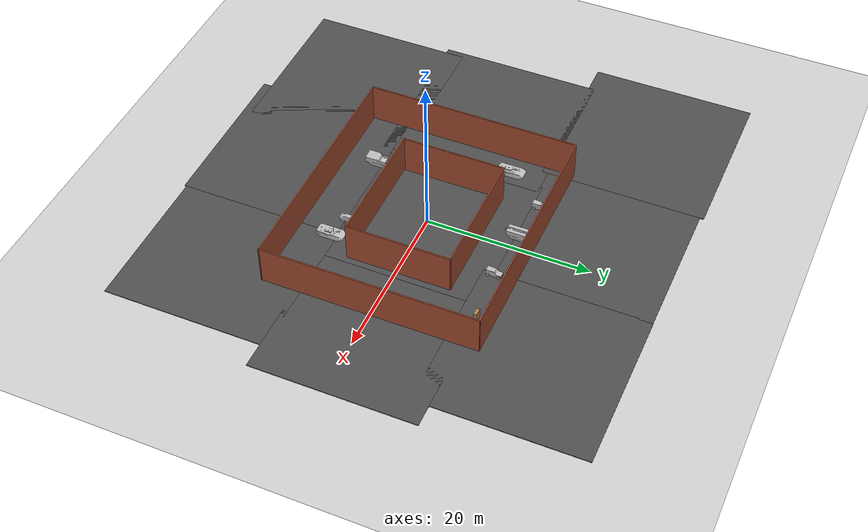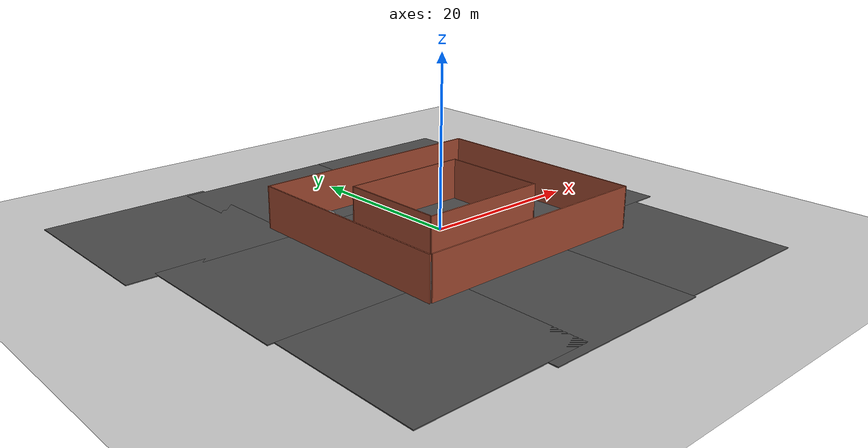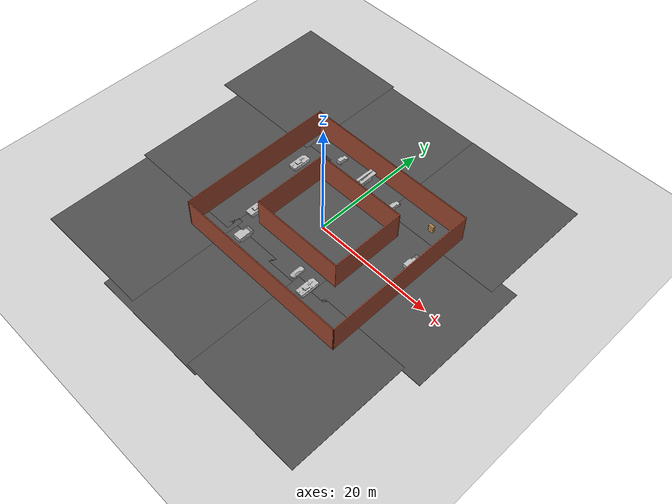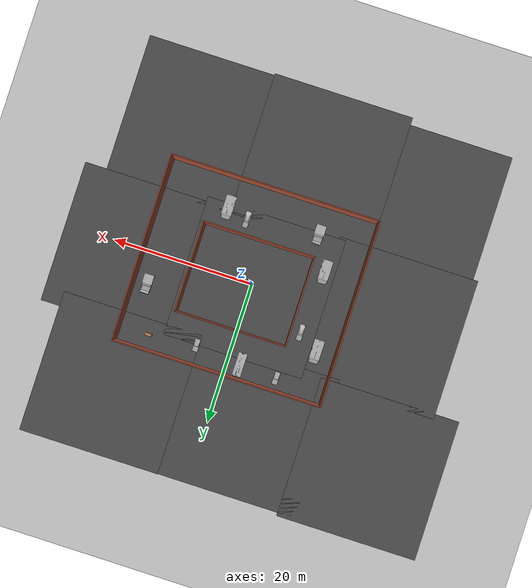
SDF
<sdf version="1.6">
 <world name="default">
  <light name="sun" type="directional">
   <pose>0 0 10 0 -0 0</pose>
   <diffuse>0.8 0.8 0.8 1</diffuse>
   <specular>0.2 0.2 0.2 1</specular>
   <attenuation>
    <range>1000</range>
    <constant>0.9</constant>
    <linear>0.01</linear>
    <quadratic>0.001</quadratic>
   </attenuation>
   <direction>-0.5 0.1 -0.9</direction>
  </light>
  <model name="ground_plane">
   <static>1</static>
   <link name="link">
    <collision name="collision">
     <geometry><plane><normal>0 0 1</normal><size>100 100</size></plane></geometry>
     <surface>
      <contact><collide_bitmask>65535</collide_bitmask></contact>
      <friction><ode><mu>100</mu><mu2>50</mu2></ode></friction>
     </surface>
    </collision>
    <visual name="visual">
     <cast_shadows>0</cast_shadows>
     <geometry><plane><normal>0 0 1</normal><size>100 100</size></plane></geometry>
     <material>
      <script><uri>file://media/materials/scripts/gazebo.material</uri><name>Gazebo/Grey</name></script>
     </material>
    </visual>
   </link>
  </model>
  <gravity>0 0 -9.8</gravity>
  <magnetic_field>6e-06 2.3e-05 -4.2e-05</magnetic_field>
  <atmosphere type="adiabatic"/>
  <physics name="default_physics" default="0" type="ode">
   <max_step_size>0.001</max_step_size>
   <real_time_factor>1</real_time_factor>
   <real_time_update_rate>1000</real_time_update_rate>
  </physics>
  <scene><ambient>0.4 0.4 0.4 1</ambient><background>0.7 0.7 0.7 1</background><shadows>1</shadows></scene>
  <audio><device>default</device></audio>
  <spherical_coordinates>
   <surface_model>EARTH_WGS84</surface_model>
   <latitude_deg>0</latitude_deg>
   <longitude_deg>0</longitude_deg>
   <elevation>0</elevation>
   <heading_deg>0</heading_deg>
  </spherical_coordinates>
  <model name="wall_sdf">
   <pose>0.86237 -0.1343 0 0 -0 0</pose>
   <link name="Wall_17">
    <collision name="Wall_17_Collision">
     <geometry><box><size>29.25 0.15 5</size></box></geometry>
     <pose>0 0 2.5 0 -0 0</pose>
    </collision>
    <visual name="Wall_17_Visual">
     <pose>0 0 2.5 0 -0 0</pose>
     <geometry><box><size>29.25 0.15 5</size></box></geometry>
     <material>
      <script><uri>file://media/materials/scripts/gazebo.material</uri><name>Gazebo/Bricks</name></script>
      <ambient>1 1 1 1</ambient>
     </material>
     <meta><layer>0</layer></meta>
    </visual>
    <pose>0.1599 -13.0851 0 0 -0 3.4e-05</pose>
   </link>
   <link name="Wall_18">
    <collision name="Wall_18_Collision">
     <geometry><box><size>26.3201 0.15 5</size></box></geometry>
     <pose>0 0 2.5 0 -0 0</pose>
    </collision>
    <visual name="Wall_18_Visual">
     <pose>0 0 2.5 0 -0 0</pose>
     <geometry><box><size>26.3201 0.15 5</size></box></geometry>
     <material>
      <script><uri>file://media/materials/scripts/gazebo.material</uri><name>Gazebo/Bricks</name></script>
      <ambient>1 1 1 1</ambient>
     </material>
     <meta><layer>0</layer></meta>
    </visual>
    <pose>14.6749 0.000401 0 0 -0 1.57347</pose>
   </link>
   <link name="Wall_19">
    <collision name="Wall_19_Collision">
     <geometry><box><size>29.5 0.15 5</size></box></geometry>
     <pose>0 0 2.5 0 -0 0</pose>
    </collision>
    <visual name="Wall_19_Visual">
     <pose>0 0 2.5 0 -0 0</pose>
     <geometry><box><size>29.5 0.15 5</size></box></geometry>
     <material>
      <script><uri>file://media/materials/scripts/gazebo.material</uri><name>Gazebo/Bricks</name></script>
      <ambient>1 1 1 1</ambient>
     </material>
     <meta><layer>0</layer></meta>
    </visual>
    <pose>-0.0351 13.0854 0 0 -0 3.14159</pose>
   </link>
   <link name="Wall_20">
    <collision name="Wall_20_Collision">
     <geometry><box><size>26.25 0.15 5</size></box></geometry>
     <pose>0 0 2.5 0 -0 0</pose>
    </collision>
    <visual name="Wall_20_Visual">
     <pose>0 0 2.5 0 -0 0</pose>
     <geometry><box><size>26.25 0.15 5</size></box></geometry>
     <material>
      <script><uri>file://media/materials/scripts/gazebo.material</uri><name>Gazebo/Bricks</name></script>
      <ambient>1 1 1 1</ambient>
     </material>
     <meta><layer>0</layer></meta>
    </visual>
    <pose>-14.7101 0.035402 0 0 -0 -1.5708</pose>
   </link>
   <link name="Wall_23">
    <collision name="Wall_23_Collision">
     <geometry><box><size>15.75 0.15 5</size></box></geometry>
     <pose>0 0 2.5 0 -0 0</pose>
    </collision>
    <visual name="Wall_23_Visual">
     <pose>0 0 2.5 0 -0 0</pose>
     <geometry><box><size>15.75 0.15 5</size></box></geometry>
     <material>
      <script><uri>file://media/materials/scripts/gazebo.material</uri><name>Gazebo/Bricks</name></script>
      <ambient>1 1 1 1</ambient>
     </material>
     <meta><layer>0</layer></meta>
    </visual>
    <pose>0.0229 -5.8436 0 0 -0 0</pose>
   </link>
   <link name="Wall_24">
    <collision name="Wall_24_Collision">
     <geometry><box><size>12.786 0.15 5</size></box></geometry>
     <pose>0 0 2.5 0 -0 0</pose>
    </collision>
    <visual name="Wall_24_Visual">
     <pose>0 0 2.5 0 -0 0</pose>
     <geometry><box><size>12.786 0.15 5</size></box></geometry>
     <material>
      <script><uri>file://media/materials/scripts/gazebo.material</uri><name>Gazebo/Bricks</name></script>
      <ambient>1 1 1 1</ambient>
     </material>
     <meta><layer>0</layer></meta>
    </visual>
    <pose>7.8229 0.474401 0 0 -0 1.5708</pose>
   </link>
   <link name="Wall_25">
    <collision name="Wall_25_Collision">
     <geometry><box><size>15.75 0.15 5</size></box></geometry>
     <pose>0 0 2.5 0 -0 0</pose>
    </collision>
    <visual name="Wall_25_Visual">
     <pose>0 0 2.5 0 -0 0</pose>
     <geometry><box><size>15.75 0.15 5</size></box></geometry>
     <material>
      <script><uri>file://media/materials/scripts/gazebo.material</uri><name>Gazebo/Bricks</name></script>
      <ambient>1 1 1 1</ambient>
     </material>
     <meta><layer>0</layer></meta>
    </visual>
    <pose>0.0229 6.7924 0 0 -0 3.14159</pose>
   </link>
   <link name="Wall_26">
    <collision name="Wall_26_Collision">
     <geometry><box><size>12.571 0.15 5</size></box></geometry>
     <pose>0 0 2.5 0 -0 0</pose>
    </collision>
    <visual name="Wall_26_Visual">
     <pose>0 0 2.5 0 -0 0</pose>
     <geometry><box><size>12.571 0.15 5</size></box></geometry>
     <material>
      <script><uri>file://media/materials/scripts/gazebo.material</uri><name>Gazebo/Bricks</name></script>
      <ambient>1 1 1 1</ambient>
     </material>
     <meta><layer>0</layer></meta>
    </visual>
    <pose>-7.7771 0.581902 0 0 -0 -1.5708</pose>
   </link>
   <static>1</static>
  </model>
  <model name="asphalt_plane_0">
   <static>1</static>
   <link name="link">
    <collision name="collision"><geometry><box><size>20 20 0.1</size></box></geometry></collision>
    <visual name="visual">
     <cast_shadows>0</cast_shadows>
     <geometry><box><size>20 20 0.1</size></box></geometry>
     <material>
      <script>
       <uri>model://asphalt_plane/materials/scripts</uri>
       <uri>model://asphalt_plane/materials/textures</uri>
       <name>vrc/asphalt</name>
      </script>
     </material>
    </visual>
   </link>
   <pose>-19.542 0.036842 0 0 -0 0</pose>
  </model>
  <model name="asphalt_plane_1">
   <static>1</static>
   <link name="link">
    <collision name="collision"><geometry><box><size>20 20 0.1</size></box></geometry></collision>
    <visual name="visual">
     <cast_shadows>0</cast_shadows>
     <geometry><box><size>20 20 0.1</size></box></geometry>
     <material>
      <script>
       <uri>model://asphalt_plane/materials/scripts</uri>
       <uri>model://asphalt_plane/materials/textures</uri>
       <name>vrc/asphalt</name>
      </script>
     </material>
    </visual>
   </link>
   <pose>-18.8455 -17.6454 0 0 -0 0</pose>
  </model>
  <model name="asphalt_plane_2">
   <static>1</static>
   <link name="link">
    <collision name="collision"><geometry><box><size>20 20 0.1</size></box></geometry></collision>
    <visual name="visual">
     <cast_shadows>0</cast_shadows>
     <geometry><box><size>20 20 0.1</size></box></geometry>
     <material>
      <script>
       <uri>model://asphalt_plane/materials/scripts</uri>
       <uri>model://asphalt_plane/materials/textures</uri>
       <name>vrc/asphalt</name>
      </script>
     </material>
    </visual>
   </link>
   <pose>-4.06392 -18.6881 0 0 -0 0</pose>
  </model>
  <model name="asphalt_plane_3">
   <static>1</static>
   <link name="link">
    <collision name="collision"><geometry><box><size>20 20 0.1</size></box></geometry></collision>
    <visual name="visual">
     <cast_shadows>0</cast_shadows>
     <geometry><box><size>20 20 0.1</size></box></geometry>
     <material>
      <script>
       <uri>model://asphalt_plane/materials/scripts</uri>
       <uri>model://asphalt_plane/materials/textures</uri>
       <name>vrc/asphalt</name>
      </script>
     </material>
    </visual>
   </link>
   <pose>14.0061 -18.4264 0 0 -0 0</pose>
  </model>
  <model name="asphalt_plane_4">
   <static>1</static>
   <link name="link">
    <collision name="collision"><geometry><box><size>20 20 0.1</size></box></geometry></collision>
    <visual name="visual">
     <cast_shadows>0</cast_shadows>
     <geometry><box><size>20 20 0.1</size></box></geometry>
     <material>
      <script>
       <uri>model://asphalt_plane/materials/scripts</uri>
       <uri>model://asphalt_plane/materials/textures</uri>
       <name>vrc/asphalt</name>
      </script>
     </material>
    </visual>
   </link>
   <pose>17.0836 1.00489 0 0 -0 0</pose>
  </model>
  <model name="asphalt_plane_5">
   <static>1</static>
   <link name="link">
    <collision name="collision"><geometry><box><size>20 20 0.1</size></box></geometry></collision>
    <visual name="visual">
     <cast_shadows>0</cast_shadows>
     <geometry><box><size>20 20 0.1</size></box></geometry>
     <material>
      <script>
       <uri>model://asphalt_plane/materials/scripts</uri>
       <uri>model://asphalt_plane/materials/textures</uri>
       <name>vrc/asphalt</name>
      </script>
     </material>
    </visual>
   </link>
   <pose>14.3755 18.9058 0 0 -0 0</pose>
  </model>
  <model name="asphalt_plane_6">
   <static>1</static>
   <link name="link">
    <collision name="collision"><geometry><box><size>20 20 0.1</size></box></geometry></collision>
    <visual name="visual">
     <cast_shadows>0</cast_shadows>
     <geometry><box><size>20 20 0.1</size></box></geometry>
     <material>
      <script>
       <uri>model://asphalt_plane/materials/scripts</uri>
       <uri>model://asphalt_plane/materials/textures</uri>
       <name>vrc/asphalt</name>
      </script>
     </material>
    </visual>
   </link>
   <pose>-5.47798 18.8643 0 0 -0 0</pose>
  </model>
  <model name="asphalt_plane_7">
   <static>1</static>
   <link name="link">
    <collision name="collision"><geometry><box><size>20 20 0.1</size></box></geometry></collision>
    <visual name="visual">
     <cast_shadows>0</cast_shadows>
     <geometry><box><size>20 20 0.1</size></box></geometry>
     <material>
      <script>
       <uri>model://asphalt_plane/materials/scripts</uri>
       <uri>model://asphalt_plane/materials/textures</uri>
       <name>vrc/asphalt</name>
      </script>
     </material>
    </visual>
   </link>
   <pose>-23.0053 19.3151 0 0 -0 0</pose>
  </model>
  <model name="bookshelf">
   <static>1</static>
   <link name="link">
    <inertial><mass>1</mass></inertial>
    <collision name="back">
     <pose>0 0.005 0.6 0 -0 0</pose>
     <geometry><box><size>0.9 0.01 1.2</size></box></geometry>
    </collision>
    <visual name="visual1">
     <pose>0 0.005 0.6 0 -0 0</pose>
     <geometry><box><size>0.9 0.01 1.2</size></box></geometry>
     <material>
      <script><uri>file://media/materials/scripts/gazebo.material</uri><name>Gazebo/Wood</name></script>
     </material>
    </visual>
    <collision name="left_side">
     <pose>0.45 -0.195 0.6 0 -0 0</pose>
     <geometry><box><size>0.02 0.4 1.2</size></box></geometry>
    </collision>
    <visual name="visual2">
     <pose>0.45 -0.195 0.6 0 -0 0</pose>
     <geometry><box><size>0.02 0.4 1.2</size></box></geometry>
     <material>
      <script><uri>file://media/materials/scripts/gazebo.material</uri><name>Gazebo/Wood</name></script>
     </material>
    </visual>
    <collision name="right_side">
     <pose>-0.45 -0.195 0.6 0 -0 0</pose>
     <geometry><box><size>0.02 0.4 1.2</size></box></geometry>
    </collision>
    <visual name="visual3">
     <pose>-0.45 -0.195 0.6 0 -0 0</pose>
     <geometry><box><size>0.02 0.4 1.2</size></box></geometry>
     <material>
      <script><uri>file://media/materials/scripts/gazebo.material</uri><name>Gazebo/Wood</name></script>
     </material>
    </visual>
    <collision name="bottom">
     <pose>0 -0.195 0.03 0 -0 0</pose>
     <geometry><box><size>0.88 0.4 0.06</size></box></geometry>
    </collision>
    <visual name="visual4">
     <pose>0 -0.195 0.03 0 -0 0</pose>
     <geometry><box><size>0.88 0.4 0.06</size></box></geometry>
     <material>
      <script><uri>file://media/materials/scripts/gazebo.material</uri><name>Gazebo/Wood</name></script>
     </material>
    </visual>
    <collision name="top">
     <pose>0 -0.195 1.19 0 -0 0</pose>
     <geometry><box><size>0.88 0.4 0.02</size></box></geometry>
    </collision>
    <visual name="visual5">
     <pose>0 -0.195 1.19 0 -0 0</pose>
     <geometry><box><size>0.88 0.4 0.02</size></box></geometry>
     <material>
      <script><uri>file://media/materials/scripts/gazebo.material</uri><name>Gazebo/Wood</name></script>
     </material>
    </visual>
    <collision name="low_shelf">
     <pose>0 -0.195 0.43 0 -0 0</pose>
     <geometry><box><size>0.88 0.4 0.02</size></box></geometry>
    </collision>
    <visual name="visual6">
     <pose>0 -0.195 0.43 0 -0 0</pose>
     <geometry><box><size>0.88 0.4 0.02</size></box></geometry>
     <material>
      <script><uri>file://media/materials/scripts/gazebo.material</uri><name>Gazebo/Wood</name></script>
     </material>
    </visual>
    <collision name="high_shelf">
     <pose>0 -0.195 0.8 0 -0 0</pose>
     <geometry><box><size>0.88 0.4 0.02</size></box></geometry>
    </collision>
    <visual name="visual7">
     <pose>0 -0.195 0.8 0 -0 0</pose>
     <geometry><box><size>0.88 0.4 0.02</size></box></geometry>
     <material>
      <script><uri>file://media/materials/scripts/gazebo.material</uri><name>Gazebo/Wood</name></script>
     </material>
    </visual>
   </link>
   <pose>11.4087 11.1567 0 0 -0 0</pose>
  </model>
  <model name="k131">
   <static>1</static>
   <link name="link">
    <inertial>
     <mass>100</mass>
     <inertia><ixx>1</ixx><ixy>0</ixy><ixz>0</ixz><iyy>1</iyy><iyz>0</iyz><izz>1</izz></inertia>
    </inertial>
    <collision name="collision">
     <geometry><mesh><scale>0.5 0.5 0.5</scale><uri>model://k131/meshes/k131.obj</uri></mesh></geometry>
     <surface><contact><ode><max_vel>0.1</max_vel><min_depth>0.001</min_depth></ode></contact></surface>
    </collision>
    <visual name="visual">
     <pose>0 0 0 1.5708 -0 0</pose>
     <geometry><mesh><scale>0.5 0.5 0.5</scale><uri>model://k131/meshes/k131.obj</uri></mesh></geometry>
    </visual>
   </link>
   <pose>-7.10669 11.2718 0 0 -0 0</pose>
  </model>
  <model name="k1avlb">
   <static>1</static>
   <link name="link">
    <inertial>
     <mass>100</mass>
     <inertia><ixx>1</ixx><ixy>0</ixy><ixz>0</ixz><iyy>1</iyy><iyz>0</iyz><izz>1</izz></inertia>
    </inertial>
    <collision name="collision">
     <geometry><mesh><scale>0.3 0.3 0.3</scale><uri>model://k1avlb/meshes/k1avlb.obj</uri></mesh></geometry>
     <surface><contact><ode><max_vel>0.1</max_vel><min_depth>0.001</min_depth></ode></contact></surface>
    </collision>
    <visual name="visual">
     <pose>0 0 0 1.5708 -0 0</pose>
     <geometry><mesh><scale>0.3 0.3 0.3</scale><uri>model://k1avlb/meshes/k1avlb.obj</uri></mesh></geometry>
    </visual>
   </link>
   <pose>-1.78213 10.7036 0 0 -0 0</pose>
  </model>
  <model name="bmp1">
   <static>1</static>
   <link name="link">
    <inertial>
     <mass>100</mass>
     <inertia><ixx>1</ixx><ixy>0</ixy><ixz>0</ixz><iyy>1</iyy><iyz>0</iyz><izz>1</izz></inertia>
    </inertial>
    <collision name="collision">
     <geometry><mesh><scale>0.5 0.5 0.5</scale><uri>model://bmp1/meshes/bmp1.obj</uri></mesh></geometry>
     <surface><contact><ode><max_vel>0.1</max_vel><min_depth>0.001</min_depth></ode></contact></surface>
    </collision>
    <visual name="visual">
     <pose>0 0 0 1.5708 -0 0</pose>
     <geometry><mesh><scale>0.5 0.5 0.5</scale><uri>model://bmp1/meshes/bmp1.obj</uri></mesh></geometry>
    </visual>
   </link>
   <pose>6.37074 -9.04807 0 0 -0 0</pose>
  </model>
  <model name="car">
   <static>1</static>
   <link name="link">
    <inertial>
     <mass>100</mass>
     <inertia><ixx>1</ixx><ixy>0</ixy><ixz>0</ixz><iyy>1</iyy><iyz>0</iyz><izz>1</izz></inertia>
    </inertial>
    <collision name="collision">
     <geometry><mesh><scale>0.5 0.5 0.5</scale><uri>model://car/meshes/car.obj</uri></mesh></geometry>
     <surface><contact><ode><max_vel>0.1</max_vel><min_depth>0.001</min_depth></ode></contact></surface>
    </collision>
    <visual name="visual">
     <pose>0 0 0 1.5708 -0 0</pose>
     <geometry><mesh><scale>0.5 0.5 0.5</scale><uri>model://car/meshes/car.obj</uri></mesh></geometry>
    </visual>
   </link>
   <pose>3.42316 -8.23662 0 0 -0 0</pose>
  </model>
  <model name="m9ace">
   <static>1</static>
   <link name="link">
    <inertial>
     <mass>100</mass>
     <inertia><ixx>1</ixx><ixy>0</ixy><ixz>0</ixz><iyy>1</iyy><iyz>0</iyz><izz>1</izz></inertia>
    </inertial>
    <collision name="collision">
     <geometry><mesh><scale>0.5 0.5 0.5</scale><uri>model://m9ace/meshes/m9ace.obj</uri></mesh></geometry>
     <surface><contact><ode><max_vel>0.1</max_vel><min_depth>0.001</min_depth></ode></contact></surface>
    </collision>
    <visual name="visual">
     <pose>0 0 0 1.5708 -0 0</pose>
     <geometry><mesh><scale>0.5 0.5 0.5</scale><uri>model://m9ace/meshes/m9ace.obj</uri></mesh></geometry>
    </visual>
   </link>
   <pose>-6.71033 -9.0932 0 0 -0 0</pose>
  </model>
  <model name="bmp1_0">
   <static>1</static>
   <link name="link">
    <inertial>
     <mass>100</mass>
     <inertia><ixx>1</ixx><ixy>0</ixy><ixz>0</ixz><iyy>1</iyy><iyz>0</iyz><izz>1</izz></inertia>
    </inertial>
    <collision name="collision">
     <geometry><mesh><scale>0.5 0.5 0.5</scale><uri>model://bmp1/meshes/bmp1.obj</uri></mesh></geometry>
     <surface><contact><ode><max_vel>0.1</max_vel><min_depth>0.001</min_depth></ode></contact></surface>
    </collision>
    <visual name="visual">
     <pose>0 0 0 1.5708 -0 0</pose>
     <geometry><mesh><scale>0.5 0.5 0.5</scale><uri>model://bmp1/meshes/bmp1.obj</uri></mesh></geometry>
    </visual>
   </link>
   <pose>-11.2378 6.12156 0 0 -0 0</pose>
  </model>
  <model name="bmp1_1">
   <static>1</static>
   <link name="link">
    <inertial>
     <mass>100</mass>
     <inertia><ixx>1</ixx><ixy>0</ixy><ixz>0</ixz><iyy>1</iyy><iyz>0</iyz><izz>1</izz></inertia>
    </inertial>
    <collision name="collision">
     <geometry><mesh><scale>0.5 0.5 0.5</scale><uri>model://bmp1/meshes/bmp1.obj</uri></mesh></geometry>
     <surface><contact><ode><max_vel>0.1</max_vel><min_depth>0.001</min_depth></ode></contact></surface>
    </collision>
    <visual name="visual">
     <pose>0 0 0 1.5708 -0 0</pose>
     <geometry><mesh><scale>0.5 0.5 0.5</scale><uri>model://bmp1/meshes/bmp1.obj</uri></mesh></geometry>
    </visual>
   </link>
   <pose>-9.00359 -4.64706 0 0 -0 0</pose>
  </model>
  <model name="car_0">
   <static>1</static>
   <link name="link">
    <inertial>
     <mass>100</mass>
     <inertia><ixx>1</ixx><ixy>0</ixy><ixz>0</ixz><iyy>1</iyy><iyz>0</iyz><izz>1</izz></inertia>
    </inertial>
    <collision name="collision">
     <geometry><mesh><scale>0.5 0.5 0.5</scale><uri>model://car/meshes/car.obj</uri></mesh></geometry>
     <surface><contact><ode><max_vel>0.1</max_vel><min_depth>0.001</min_depth></ode></contact></surface>
    </collision>
    <visual name="visual">
     <pose>0 0 0 1.5708 -0 0</pose>
     <geometry><mesh><scale>0.5 0.5 0.5</scale><uri>model://car/meshes/car.obj</uri></mesh></geometry>
    </visual>
   </link>
   <pose>-8.41424 4.2957 0 0 -0 0</pose>
  </model>
  <model name="k131_0">
   <static>1</static>
   <link name="link">
    <inertial>
     <mass>100</mass>
     <inertia><ixx>1</ixx><ixy>0</ixy><ixz>0</ixz><iyy>1</iyy><iyz>0</iyz><izz>1</izz></inertia>
    </inertial>
    <collision name="collision">
     <geometry><mesh><scale>0.5 0.5 0.5</scale><uri>model://k131/meshes/k131.obj</uri></mesh></geometry>
     <surface><contact><ode><max_vel>0.1</max_vel><min_depth>0.001</min_depth></ode></contact></surface>
    </collision>
    <visual name="visual">
     <pose>0 0 0 1.5708 -0 0</pose>
     <geometry><mesh><scale>0.5 0.5 0.5</scale><uri>model://k131/meshes/k131.obj</uri></mesh></geometry>
    </visual>
   </link>
   <pose>4.70714 10.3186 0 0 -0 0</pose>
  </model>
  <model name="m9ace_0">
   <static>1</static>
   <link name="link">
    <inertial>
     <mass>100</mass>
     <inertia><ixx>1</ixx><ixy>0</ixy><ixz>0</ixz><iyy>1</iyy><iyz>0</iyz><izz>1</izz></inertia>
    </inertial>
    <collision name="collision">
     <geometry><mesh><scale>0.5 0.5 0.5</scale><uri>model://m9ace/meshes/m9ace.obj</uri></mesh></geometry>
     <surface><contact><ode><max_vel>0.1</max_vel><min_depth>0.001</min_depth></ode></contact></surface>
    </collision>
    <visual name="visual">
     <pose>0 0 0 1.5708 -0 0</pose>
     <geometry><mesh><scale>0.5 0.5 0.5</scale><uri>model://m9ace/meshes/m9ace.obj</uri></mesh></geometry>
    </visual>
   </link>
   <pose>13.6995 4.59409 0 0 -0 0</pose>
  </model>
  <model name="asphalt_plane">
   <static>1</static>
   <link name="link">
    <collision name="collision"><geometry><box><size>20 20 0.1</size></box></geometry></collision>
    <visual name="visual">
     <cast_shadows>0</cast_shadows>
     <geometry><box><size>20 20 0.1</size></box></geometry>
     <material>
      <script>
       <uri>model://asphalt_plane/materials/scripts</uri>
       <uri>model://asphalt_plane/materials/textures</uri>
       <name>vrc/asphalt</name>
      </script>
     </material>
    </visual>
   </link>
   <pose>-0.472959 0.316674 0 0 -0 0</pose>
  </model>
  <include><uri>model://sun</uri></include>
  <light name="sun" type="directional">
   <pose>0 0 10 0 -0 0</pose>
   <diffuse>0.8 0.8 0.8 1</diffuse>
   <specular>0.2 0.2 0.2 1</specular>
   <attenuation>
    <range>1000</range>
    <constant>0.9</constant>
    <linear>0.01</linear>
    <quadratic>0.001</quadratic>
   </attenuation>
   <direction>-0.5 0.1 -0.9</direction>
  </light>
  <physics name="default_physics" default="0" type="ode">
   <gravity>0 0 -9.8066</gravity>
   <ode>
    <solver>
     <type>quick</type>
     <iters>10</iters>
     <sor>1.0</sor>
     <use_dynamic_moi_rescaling>0</use_dynamic_moi_rescaling>
    </solver>
    <constraints>
     <cfm>0</cfm>
     <erp>0.2</erp>
     <contact_max_correcting_vel>100</contact_max_correcting_vel>
     <contact_surface_layer>0.001</contact_surface_layer>
    </constraints>
   </ode>
   <max_step_size>0.004</max_step_size>
   <real_time_factor>1</real_time_factor>
   <real_time_update_rate>250</real_time_update_rate>
   <magnetic_field>6e-06 2.3e-05 -4.2e-05</magnetic_field>
  </physics>
 </world>
</sdf>
